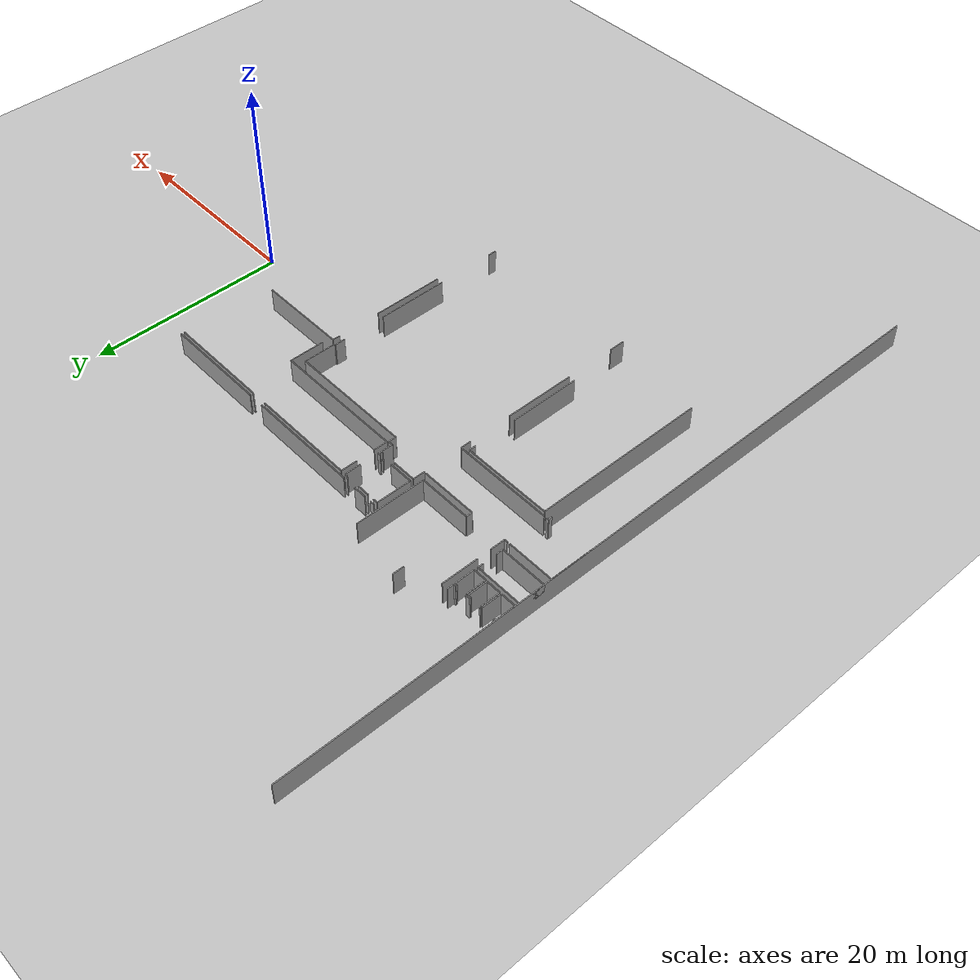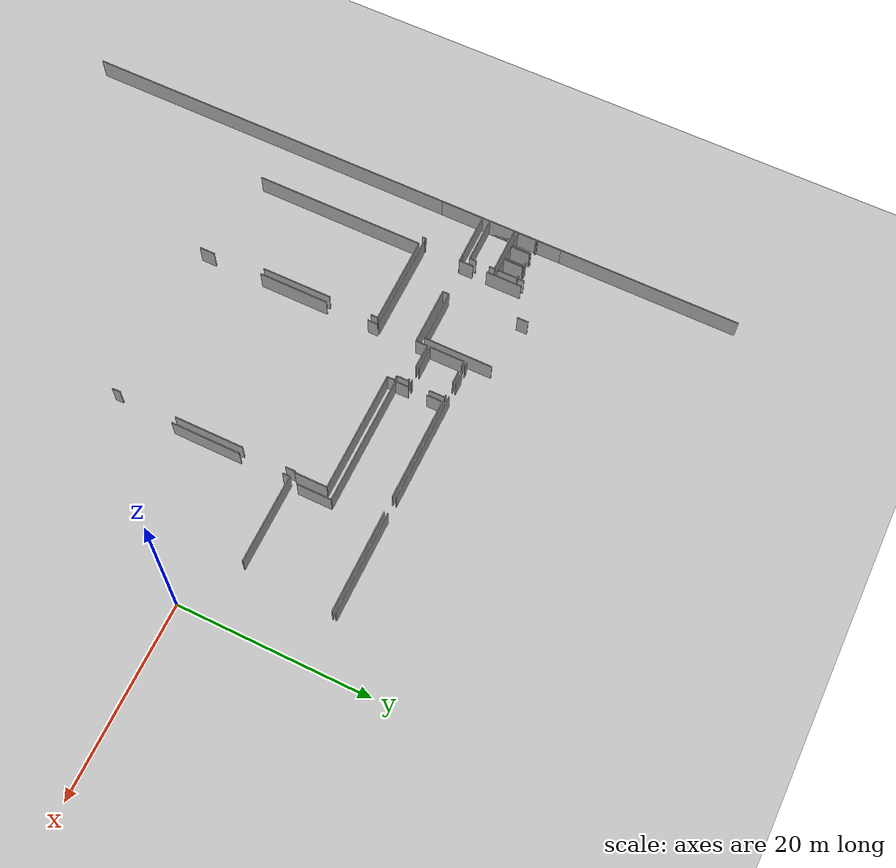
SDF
<sdf version="1.6">
 <world name="default">
  <model name="ground_plane">
   <static>1</static>
   <link name="link">
    <collision name="collision">
     <geometry><plane><normal>0 0 1</normal><size>100 100</size></plane></geometry>
     <surface><friction><ode><mu>100</mu><mu2>50</mu2></ode></friction></surface>
    </collision>
    <visual name="visual">
     <cast_shadows>0</cast_shadows>
     <geometry><plane><normal>0 0 1</normal><size>100 100</size></plane></geometry>
     <material>
      <script><uri>file://media/materials/scripts/gazebo.material</uri><name>Gazebo/Grey</name></script>
     </material>
    </visual>
   </link>
  </model>
  <model name="50053292">
   <static>1</static>
   <link name="Wall_7">
    <collision name="Wall_7_Collision">
     <geometry><box><size>5.9284049559 0.1 2.5</size></box></geometry>
     <pose>2.96420247795 0 1.25 0 0 0</pose>
    </collision>
    <visual name="Wall_7_Visual">
     <pose>2.96420247795 0 1.25 0 0 0</pose>
     <geometry><box><size>5.9284049559 0.1 2.5</size></box></geometry>
     <material>
      <script><uri>file://media/materials/scripts/gazebo.material</uri><name>Gazebo/Grey</name></script>
      <ambient>1 1 1 1</ambient>
     </material>
    </visual>
    <pose>15.3491798386 -27.5680927675 0 0 0 3.14159265359</pose>
   </link>
   <link name="Wall_8">
    <collision name="Wall_8_Collision">
     <geometry><box><size>0.65320793299 0.1 2.5</size></box></geometry>
     <pose>0.326603966495 0 1.25 0 0 0</pose>
    </collision>
    <visual name="Wall_8_Visual">
     <pose>0.326603966495 0 1.25 0 0 0</pose>
     <geometry><box><size>0.65320793299 0.1 2.5</size></box></geometry>
     <material>
      <script><uri>file://media/materials/scripts/gazebo.material</uri><name>Gazebo/Grey</name></script>
      <ambient>1 1 1 1</ambient>
     </material>
    </visual>
    <pose>9.42077488268 -27.5680927675 0 0 0 1.57079632679</pose>
   </link>
   <link name="Wall_9">
    <collision name="Wall_9_Collision">
     <geometry><box><size>5.43383142079 0.1 2.5</size></box></geometry>
     <pose>2.71691571039 0 1.25 0 0 0</pose>
    </collision>
    <visual name="Wall_9_Visual">
     <pose>2.71691571039 0 1.25 0 0 0</pose>
     <geometry><box><size>5.43383142079 0.1 2.5</size></box></geometry>
     <material>
      <script><uri>file://media/materials/scripts/gazebo.material</uri><name>Gazebo/Grey</name></script>
      <ambient>1 1 1 1</ambient>
     </material>
    </visual>
    <pose>9.42077488268 -26.9148848345 0 0 0 0.0</pose>
   </link>
   <link name="Wall_10">
    <collision name="Wall_10_Collision">
     <geometry><box><size>7.18871650928 0.1 2.5</size></box></geometry>
     <pose>3.59435825464 0 1.25 0 0 0</pose>
    </collision>
    <visual name="Wall_10_Visual">
     <pose>3.59435825464 0 1.25 0 0 0</pose>
     <geometry><box><size>7.18871650928 0.1 2.5</size></box></geometry>
     <material>
      <script><uri>file://media/materials/scripts/gazebo.material</uri><name>Gazebo/Grey</name></script>
      <ambient>1 1 1 1</ambient>
     </material>
    </visual>
    <pose>14.8546063035 -26.9148848345 0 0 0 1.57079632679</pose>
   </link>
   <link name="Wall_12">
    <collision name="Wall_12_Collision">
     <geometry><box><size>1.15463996088 0.1 2.5</size></box></geometry>
     <pose>0.577319980441 0 1.25 0 0 0</pose>
    </collision>
    <visual name="Wall_12_Visual">
     <pose>0.577319980441 0 1.25 0 0 0</pose>
     <geometry><box><size>1.15463996088 0.1 2.5</size></box></geometry>
     <material>
      <script><uri>file://media/materials/scripts/gazebo.material</uri><name>Gazebo/Grey</name></script>
      <ambient>1 1 1 1</ambient>
     </material>
    </visual>
    <pose>8.86091865701 -19.7261683252 0 0 0 1.57079632679</pose>
   </link>
   <link name="Wall_19">
    <collision name="Wall_19_Collision">
     <geometry><box><size>3.74600715061 0.1 2.5</size></box></geometry>
     <pose>1.87300357531 0 1.25 0 0 0</pose>
    </collision>
    <visual name="Wall_19_Visual">
     <pose>1.87300357531 0 1.25 0 0 0</pose>
     <geometry><box><size>3.74600715061 0.1 2.5</size></box></geometry>
     <material>
      <script><uri>file://media/materials/scripts/gazebo.material</uri><name>Gazebo/Grey</name></script>
      <ambient>1 1 1 1</ambient>
     </material>
    </visual>
    <pose>5.50292438512 -20.8548984245 0 0 0 -1.57079632679</pose>
   </link>
   <link name="Wall_20">
    <collision name="Wall_20_Collision">
     <geometry><box><size>1.49908870952 0.1 2.5</size></box></geometry>
     <pose>0.749544354762 0 1.25 0 0 0</pose>
    </collision>
    <visual name="Wall_20_Visual">
     <pose>0.749544354762 0 1.25 0 0 0</pose>
     <geometry><box><size>1.49908870952 0.1 2.5</size></box></geometry>
     <material>
      <script><uri>file://media/materials/scripts/gazebo.material</uri><name>Gazebo/Grey</name></script>
      <ambient>1 1 1 1</ambient>
     </material>
    </visual>
    <pose>5.50292438512 -26.0894525272 0 0 0 -1.57079632679</pose>
   </link>
   <link name="Wall_21">
    <collision name="Wall_21_Collision">
     <geometry><box><size>0.345210803396 0.1 2.5</size></box></geometry>
     <pose>0.172605401698 0 1.25 0 0 0</pose>
    </collision>
    <visual name="Wall_21_Visual">
     <pose>0.172605401698 0 1.25 0 0 0</pose>
     <geometry><box><size>0.345210803396 0.1 2.5</size></box></geometry>
     <material>
      <script><uri>file://media/materials/scripts/gazebo.material</uri><name>Gazebo/Grey</name></script>
      <ambient>1 1 1 1</ambient>
     </material>
    </visual>
    <pose>5.50292438512 -27.5885412367 0 0 0 3.14159265359</pose>
   </link>
   <link name="Wall_22">
    <collision name="Wall_22_Collision">
     <geometry><box><size>10.1914746529 0.1 2.5</size></box></geometry>
     <pose>5.09573732647 0 1.25 0 0 0</pose>
    </collision>
    <visual name="Wall_22_Visual">
     <pose>5.09573732647 0 1.25 0 0 0</pose>
     <geometry><box><size>10.1914746529 0.1 2.5</size></box></geometry>
     <material>
      <script><uri>file://media/materials/scripts/gazebo.material</uri><name>Gazebo/Grey</name></script>
      <ambient>1 1 1 1</ambient>
     </material>
    </visual>
    <pose>5.15771358172 -31.7080822257 0 0 0 -0.00128361635341</pose>
   </link>
   <link name="Wall_52">
    <collision name="Wall_52_Collision">
     <geometry><box><size>0.25058900482 0.1 2.5</size></box></geometry>
     <pose>0.12529450241 0 1.25 0 0 0</pose>
    </collision>
    <visual name="Wall_52_Visual">
     <pose>0.12529450241 0 1.25 0 0 0</pose>
     <geometry><box><size>0.25058900482 0.1 2.5</size></box></geometry>
     <material>
      <script><uri>file://media/materials/scripts/gazebo.material</uri><name>Gazebo/Grey</name></script>
      <ambient>1 1 1 1</ambient>
     </material>
    </visual>
    <pose>4.8386666582 -21.5034070198 0 0 0 3.14159265359</pose>
   </link>
   <link name="Wall_53">
    <collision name="Wall_53_Collision">
     <geometry><box><size>0.480221503915 0.1 2.5</size></box></geometry>
     <pose>0.240110751958 0 1.25 0 0 0</pose>
    </collision>
    <visual name="Wall_53_Visual">
     <pose>0.240110751958 0 1.25 0 0 0</pose>
     <geometry><box><size>0.480221503915 0.1 2.5</size></box></geometry>
     <material>
      <script><uri>file://media/materials/scripts/gazebo.material</uri><name>Gazebo/Grey</name></script>
      <ambient>1 1 1 1</ambient>
     </material>
    </visual>
    <pose>3.39978027421 -21.5034070198 0 0 0 3.14159265359</pose>
   </link>
   <link name="Wall_54">
    <collision name="Wall_54_Collision">
     <geometry><box><size>0.105544583378 0.1 2.5</size></box></geometry>
     <pose>0.0527722916892 0 1.25 0 0 0</pose>
    </collision>
    <visual name="Wall_54_Visual">
     <pose>0.0527722916892 0 1.25 0 0 0</pose>
     <geometry><box><size>0.105544583378 0.1 2.5</size></box></geometry>
     <material>
      <script><uri>file://media/materials/scripts/gazebo.material</uri><name>Gazebo/Grey</name></script>
      <ambient>1 1 1 1</ambient>
     </material>
    </visual>
    <pose>1.76707796455 -21.5034070198 0 0 0 3.14159265359</pose>
   </link>
   <link name="Wall_55">
    <collision name="Wall_55_Collision">
     <geometry><box><size>0.225568207076 0.1 2.5</size></box></geometry>
     <pose>0.112784103538 0 1.25 0 0 0</pose>
    </collision>
    <visual name="Wall_55_Visual">
     <pose>0.112784103538 0 1.25 0 0 0</pose>
     <geometry><box><size>0.225568207076 0.1 2.5</size></box></geometry>
     <material>
      <script><uri>file://media/materials/scripts/gazebo.material</uri><name>Gazebo/Grey</name></script>
      <ambient>1 1 1 1</ambient>
     </material>
    </visual>
    <pose>0.237253046631 -21.5034070198 0 0 0 3.14159265359</pose>
   </link>
   <link name="Wall_56">
    <collision name="Wall_56_Collision">
     <geometry><box><size>2.53027580032 0.1 2.5</size></box></geometry>
     <pose>1.26513790016 0 1.25 0 0 0</pose>
    </collision>
    <visual name="Wall_56_Visual">
     <pose>1.26513790016 0 1.25 0 0 0</pose>
     <geometry><box><size>2.53027580032 0.1 2.5</size></box></geometry>
     <material>
      <script><uri>file://media/materials/scripts/gazebo.material</uri><name>Gazebo/Grey</name></script>
      <ambient>1 1 1 1</ambient>
     </material>
    </visual>
    <pose>0.0116848395557 -21.5034070198 0 0 0 1.57079632679</pose>
   </link>
   <link name="Wall_59">
    <collision name="Wall_59_Collision">
     <geometry><box><size>0.68470619614 0.1 2.5</size></box></geometry>
     <pose>0.34235309807 0 1.25 0 0 0</pose>
    </collision>
    <visual name="Wall_59_Visual">
     <pose>0.34235309807 0 1.25 0 0 0</pose>
     <geometry><box><size>0.68470619614 0.1 2.5</size></box></geometry>
     <material>
      <script><uri>file://media/materials/scripts/gazebo.material</uri><name>Gazebo/Grey</name></script>
      <ambient>1 1 1 1</ambient>
     </material>
    </visual>
    <pose>4.8386666582 -20.8187008237 0 0 0 -1.57079632679</pose>
   </link>
   <link name="Wall_60">
    <collision name="Wall_60_Collision">
     <geometry><box><size>1.42580444405 0.1 2.5</size></box></geometry>
     <pose>0.712902222025 0 1.25 0 0 0</pose>
    </collision>
    <visual name="Wall_60_Visual">
     <pose>0.712902222025 0 1.25 0 0 0</pose>
     <geometry><box><size>1.42580444405 0.1 2.5</size></box></geometry>
     <material>
      <script><uri>file://media/materials/scripts/gazebo.material</uri><name>Gazebo/Grey</name></script>
      <ambient>1 1 1 1</ambient>
     </material>
    </visual>
    <pose>4.85975017305 -23.6765331589 0 0 0 3.14159265359</pose>
   </link>
   <link name="Wall_61">
    <collision name="Wall_61_Collision">
     <geometry><box><size>2.06326324546 0.1 2.5</size></box></geometry>
     <pose>1.03163162273 0 1.25 0 0 0</pose>
    </collision>
    <visual name="Wall_61_Visual">
     <pose>1.03163162273 0 1.25 0 0 0</pose>
     <geometry><box><size>2.06326324546 0.1 2.5</size></box></geometry>
     <material>
      <script><uri>file://media/materials/scripts/gazebo.material</uri><name>Gazebo/Grey</name></script>
      <ambient>1 1 1 1</ambient>
     </material>
    </visual>
    <pose>3.433945729 -23.6765331589 0 0 0 1.57079632679</pose>
   </link>
   <link name="Wall_62">
    <collision name="Wall_62_Collision">
     <geometry><box><size>0.225187179699 0.1 2.5</size></box></geometry>
     <pose>0.112593589849 0 1.25 0 0 0</pose>
    </collision>
    <visual name="Wall_62_Visual">
     <pose>0.112593589849 0 1.25 0 0 0</pose>
     <geometry><box><size>0.225187179699 0.1 2.5</size></box></geometry>
     <material>
      <script><uri>file://media/materials/scripts/gazebo.material</uri><name>Gazebo/Grey</name></script>
      <ambient>1 1 1 1</ambient>
     </material>
    </visual>
    <pose>4.59823838343 -21.6132699134 0 0 0 0.0</pose>
   </link>
   <link name="Wall_63">
    <collision name="Wall_63_Collision">
     <geometry><box><size>2.06358297564 0.1 2.5</size></box></geometry>
     <pose>1.03179148782 0 1.25 0 0 0</pose>
    </collision>
    <visual name="Wall_63_Visual">
     <pose>1.03179148782 0 1.25 0 0 0</pose>
     <geometry><box><size>2.06358297564 0.1 2.5</size></box></geometry>
     <material>
      <script><uri>file://media/materials/scripts/gazebo.material</uri><name>Gazebo/Grey</name></script>
      <ambient>1 1 1 1</ambient>
     </material>
    </visual>
    <pose>4.82342556313 -21.6132699134 0 0 0 -1.55319272834</pose>
   </link>
   <link name="Wall_64">
    <collision name="Wall_64_Collision">
     <geometry><box><size>1.51001149433 0.1 2.5</size></box></geometry>
     <pose>0.755005747163 0 1.25 0 0 0</pose>
    </collision>
    <visual name="Wall_64_Visual">
     <pose>0.755005747163 0 1.25 0 0 0</pose>
     <geometry><box><size>1.51001149433 0.1 2.5</size></box></geometry>
     <material>
      <script><uri>file://media/materials/scripts/gazebo.material</uri><name>Gazebo/Grey</name></script>
      <ambient>1 1 1 1</ambient>
     </material>
    </visual>
    <pose>3.28572607942 -23.6560846897 0 0 0 3.14159265359</pose>
   </link>
   <link name="Wall_65">
    <collision name="Wall_65_Collision">
     <geometry><box><size>2.03608329258 0.1 2.5</size></box></geometry>
     <pose>1.01804164629 0 1.25 0 0 0</pose>
    </collision>
    <visual name="Wall_65_Visual">
     <pose>1.01804164629 0 1.25 0 0 0</pose>
     <geometry><box><size>2.03608329258 0.1 2.5</size></box></geometry>
     <material>
      <script><uri>file://media/materials/scripts/gazebo.material</uri><name>Gazebo/Grey</name></script>
      <ambient>1 1 1 1</ambient>
     </material>
    </visual>
    <pose>1.77571458509 -23.6560846897 0 0 0 1.57079632679</pose>
   </link>
   <link name="Wall_66">
    <collision name="Wall_66_Collision">
     <geometry><box><size>0.365405254368 0.1 2.5</size></box></geometry>
     <pose>0.182702627184 0 1.25 0 0 0</pose>
    </collision>
    <visual name="Wall_66_Visual">
     <pose>0.182702627184 0 1.25 0 0 0</pose>
     <geometry><box><size>0.365405254368 0.1 2.5</size></box></geometry>
     <material>
      <script><uri>file://media/materials/scripts/gazebo.material</uri><name>Gazebo/Grey</name></script>
      <ambient>1 1 1 1</ambient>
     </material>
    </visual>
    <pose>2.9036826296 -21.6200013971 0 0 0 0.0</pose>
   </link>
   <link name="Wall_67">
    <collision name="Wall_67_Collision">
     <geometry><box><size>2.03615127235 0.1 2.5</size></box></geometry>
     <pose>1.01807563617 0 1.25 0 0 0</pose>
    </collision>
    <visual name="Wall_67_Visual">
     <pose>1.01807563617 0 1.25 0 0 0</pose>
     <geometry><box><size>2.03615127235 0.1 2.5</size></box></geometry>
     <material>
      <script><uri>file://media/materials/scripts/gazebo.material</uri><name>Gazebo/Grey</name></script>
      <ambient>1 1 1 1</ambient>
     </material>
    </visual>
    <pose>3.26908788396 -21.6200013971 0 0 0 -1.56262484128</pose>
   </link>
   <link name="Wall_68">
    <collision name="Wall_68_Collision">
     <geometry><box><size>1.59777480012 0.1 2.5</size></box></geometry>
     <pose>0.79888740006 0 1.25 0 0 0</pose>
    </collision>
    <visual name="Wall_68_Visual">
     <pose>0.79888740006 0 1.25 0 0 0</pose>
     <geometry><box><size>1.59777480012 0.1 2.5</size></box></geometry>
     <material>
      <script><uri>file://media/materials/scripts/gazebo.material</uri><name>Gazebo/Grey</name></script>
      <ambient>1 1 1 1</ambient>
     </material>
    </visual>
    <pose>1.61644514158 -23.6560846897 0 0 0 3.14159265359</pose>
   </link>
   <link name="Wall_69">
    <collision name="Wall_69_Collision">
     <geometry><box><size>2.03163797319 0.1 2.5</size></box></geometry>
     <pose>1.01581898659 0 1.25 0 0 0</pose>
    </collision>
    <visual name="Wall_69_Visual">
     <pose>1.01581898659 0 1.25 0 0 0</pose>
     <geometry><box><size>2.03163797319 0.1 2.5</size></box></geometry>
     <material>
      <script><uri>file://media/materials/scripts/gazebo.material</uri><name>Gazebo/Grey</name></script>
      <ambient>1 1 1 1</ambient>
     </material>
    </visual>
    <pose>0.018670341464 -23.6560846897 0 0 0 1.57079632679</pose>
   </link>
   <link name="Wall_70">
    <collision name="Wall_70_Collision">
     <geometry><box><size>0.208548984245 0.1 2.5</size></box></geometry>
     <pose>0.104274492122 0 1.25 0 0 0</pose>
    </collision>
    <visual name="Wall_70_Visual">
     <pose>0.104274492122 0 1.25 0 0 0</pose>
     <geometry><box><size>0.208548984245 0.1 2.5</size></box></geometry>
     <material>
      <script><uri>file://media/materials/scripts/gazebo.material</uri><name>Gazebo/Grey</name></script>
      <ambient>1 1 1 1</ambient>
     </material>
    </visual>
    <pose>0.018670341464 -21.6244467165 0 0 0 0.0</pose>
   </link>
   <link name="Wall_71">
    <collision name="Wall_71_Collision">
     <geometry><box><size>2.03179204015 0.1 2.5</size></box></geometry>
     <pose>1.01589602008 0 1.25 0 0 0</pose>
    </collision>
    <visual name="Wall_71_Visual">
     <pose>1.01589602008 0 1.25 0 0 0</pose>
     <geometry><box><size>2.03179204015 0.1 2.5</size></box></geometry>
     <material>
      <script><uri>file://media/materials/scripts/gazebo.material</uri><name>Gazebo/Grey</name></script>
      <ambient>1 1 1 1</ambient>
     </material>
    </visual>
    <pose>1.64146593933 -21.6244467165 0 0 0 -1.5831112831</pose>
   </link>
   <link name="Wall_72">
    <collision name="Wall_72_Collision">
     <geometry><box><size>4.83739656694 0.1 2.5</size></box></geometry>
     <pose>2.41869828347 0 1.25 0 0 0</pose>
    </collision>
    <visual name="Wall_72_Visual">
     <pose>2.41869828347 0 1.25 0 0 0</pose>
     <geometry><box><size>4.83739656694 0.1 2.5</size></box></geometry>
     <material>
      <script><uri>file://media/materials/scripts/gazebo.material</uri><name>Gazebo/Grey</name></script>
      <ambient>1 1 1 1</ambient>
     </material>
    </visual>
    <pose>4.83739656694 -26.7824143165 0 0 0 3.14159265359</pose>
   </link>
   <link name="Wall_73">
    <collision name="Wall_73_Collision">
     <geometry><box><size>2.71697921496 0.1 2.5</size></box></geometry>
     <pose>1.35848960748 0 1.25 0 0 0</pose>
    </collision>
    <visual name="Wall_73_Visual">
     <pose>1.35848960748 0 1.25 0 0 0</pose>
     <geometry><box><size>2.71697921496 0.1 2.5</size></box></geometry>
     <material>
      <script><uri>file://media/materials/scripts/gazebo.material</uri><name>Gazebo/Grey</name></script>
      <ambient>1 1 1 1</ambient>
     </material>
    </visual>
    <pose>0.0 -26.7824143165 0 0 0 1.57079632679</pose>
   </link>
   <link name="Wall_74">
    <collision name="Wall_74_Collision">
     <geometry><box><size>4.82190145362 0.1 2.5</size></box></geometry>
     <pose>2.41095072681 0 1.25 0 0 0</pose>
    </collision>
    <visual name="Wall_74_Visual">
     <pose>2.41095072681 0 1.25 0 0 0</pose>
     <geometry><box><size>4.82190145362 0.1 2.5</size></box></geometry>
     <material>
      <script><uri>file://media/materials/scripts/gazebo.material</uri><name>Gazebo/Grey</name></script>
      <ambient>1 1 1 1</ambient>
     </material>
    </visual>
    <pose>0.0 -24.0654351015 0 0 0 0.0</pose>
   </link>
   <link name="Wall_75">
    <collision name="Wall_75_Collision">
     <geometry><box><size>0.569635928341 0.1 2.5</size></box></geometry>
     <pose>0.284817964171 0 1.25 0 0 0</pose>
    </collision>
    <visual name="Wall_75_Visual">
     <pose>0.284817964171 0 1.25 0 0 0</pose>
     <geometry><box><size>0.569635928341 0.1 2.5</size></box></geometry>
     <material>
      <script><uri>file://media/materials/scripts/gazebo.material</uri><name>Gazebo/Grey</name></script>
      <ambient>1 1 1 1</ambient>
     </material>
    </visual>
    <pose>4.82190145362 -24.0654351015 0 0 0 -1.57079632679</pose>
   </link>
   <link name="Wall_76">
    <collision name="Wall_76_Collision">
     <geometry><box><size>0.731482681371 0.1 2.5</size></box></geometry>
     <pose>0.365741340685 0 1.25 0 0 0</pose>
    </collision>
    <visual name="Wall_76_Visual">
     <pose>0.365741340685 0 1.25 0 0 0</pose>
     <geometry><box><size>0.731482681371 0.1 2.5</size></box></geometry>
     <material>
      <script><uri>file://media/materials/scripts/gazebo.material</uri><name>Gazebo/Grey</name></script>
      <ambient>1 1 1 1</ambient>
     </material>
    </visual>
    <pose>4.82190145362 -26.0510957712 0 0 0 -1.54961158408</pose>
   </link>
   <link name="Wall_77">
    <collision name="Wall_77_Collision">
     <geometry><box><size>4.48253307 0.1 2.5</size></box></geometry>
     <pose>2.241266535 0 1.25 0 0 0</pose>
    </collision>
    <visual name="Wall_77_Visual">
     <pose>2.241266535 0 1.25 0 0 0</pose>
     <geometry><box><size>4.48253307 0.1 2.5</size></box></geometry>
     <material>
      <script><uri>file://media/materials/scripts/gazebo.material</uri><name>Gazebo/Grey</name></script>
      <ambient>1 1 1 1</ambient>
     </material>
    </visual>
    <pose>0.0127009125606 -32.082505128 0 0 0 1.57079632679</pose>
   </link>
   <link name="Wall_78">
    <collision name="Wall_78_Collision">
     <geometry><box><size>4.87994462402 0.1 2.5</size></box></geometry>
     <pose>2.43997231201 0 1.25 0 0 0</pose>
    </collision>
    <visual name="Wall_78_Visual">
     <pose>2.43997231201 0 1.25 0 0 0</pose>
     <geometry><box><size>4.87994462402 0.1 2.5</size></box></geometry>
     <material>
      <script><uri>file://media/materials/scripts/gazebo.material</uri><name>Gazebo/Grey</name></script>
      <ambient>1 1 1 1</ambient>
     </material>
    </visual>
    <pose>0.0127009125606 -27.599972058 0 0 0 0.0</pose>
   </link>
   <link name="Wall_79">
    <collision name="Wall_79_Collision">
     <geometry><box><size>0.228743435216 0.1 2.5</size></box></geometry>
     <pose>0.114371717608 0 1.25 0 0 0</pose>
    </collision>
    <visual name="Wall_79_Visual">
     <pose>0.114371717608 0 1.25 0 0 0</pose>
     <geometry><box><size>0.228743435216 0.1 2.5</size></box></geometry>
     <material>
      <script><uri>file://media/materials/scripts/gazebo.material</uri><name>Gazebo/Grey</name></script>
      <ambient>1 1 1 1</ambient>
     </material>
    </visual>
    <pose>4.89264553658 -31.7080822257 0 0 0 3.14159265359</pose>
   </link>
   <link name="Wall_80">
    <collision name="Wall_80_Collision">
     <geometry><box><size>0.374589683097 0.1 2.5</size></box></geometry>
     <pose>0.187294841548 0 1.25 0 0 0</pose>
    </collision>
    <visual name="Wall_80_Visual">
     <pose>0.187294841548 0 1.25 0 0 0</pose>
     <geometry><box><size>0.374589683097 0.1 2.5</size></box></geometry>
     <material>
      <script><uri>file://media/materials/scripts/gazebo.material</uri><name>Gazebo/Grey</name></script>
      <ambient>1 1 1 1</ambient>
     </material>
    </visual>
    <pose>4.66390210137 -31.7080822257 0 0 0 -1.54095444213</pose>
   </link>
   <link name="Wall_81">
    <collision name="Wall_81_Collision">
     <geometry><box><size>17.8629444526 0.1 2.5</size></box></geometry>
     <pose>8.93147222628 0 1.25 0 0 0</pose>
    </collision>
    <visual name="Wall_81_Visual">
     <pose>8.93147222628 0 1.25 0 0 0</pose>
     <geometry><box><size>17.8629444526 0.1 2.5</size></box></geometry>
     <material>
      <script><uri>file://media/materials/scripts/gazebo.material</uri><name>Gazebo/Grey</name></script>
      <ambient>1 1 1 1</ambient>
     </material>
    </visual>
    <pose>5.50292438512 -49.9355428688 0 0 0 1.57079632679</pose>
   </link>
   <link name="Wall_82">
    <collision name="Wall_82_Collision">
     <geometry><box><size>9.32958233049 0.1 2.5</size></box></geometry>
     <pose>4.66479116525 0 1.25 0 0 0</pose>
    </collision>
    <visual name="Wall_82_Visual">
     <pose>4.66479116525 0 1.25 0 0 0</pose>
     <geometry><box><size>9.32958233049 0.1 2.5</size></box></geometry>
     <material>
      <script><uri>file://media/materials/scripts/gazebo.material</uri><name>Gazebo/Grey</name></script>
      <ambient>1 1 1 1</ambient>
     </material>
    </visual>
    <pose>5.50292438512 -32.0725984162 0 0 0 0.0</pose>
   </link>
   <link name="Wall_83">
    <collision name="Wall_83_Collision">
     <geometry><box><size>0.708456902628 0.1 2.5</size></box></geometry>
     <pose>0.354228451314 0 1.25 0 0 0</pose>
    </collision>
    <visual name="Wall_83_Visual">
     <pose>0.354228451314 0 1.25 0 0 0</pose>
     <geometry><box><size>0.708456902628 0.1 2.5</size></box></geometry>
     <material>
      <script><uri>file://media/materials/scripts/gazebo.material</uri><name>Gazebo/Grey</name></script>
      <ambient>1 1 1 1</ambient>
     </material>
    </visual>
    <pose>14.8325067156 -32.0725984162 0 0 0 -1.57079632679</pose>
   </link>
   <link name="Wall_84">
    <collision name="Wall_84_Collision">
     <geometry><box><size>7.3418396544 0.1 2.5</size></box></geometry>
     <pose>3.6709198272 0 1.25 0 0 0</pose>
    </collision>
    <visual name="Wall_84_Visual">
     <pose>3.6709198272 0 1.25 0 0 0</pose>
     <geometry><box><size>7.3418396544 0.1 2.5</size></box></geometry>
     <material>
      <script><uri>file://media/materials/scripts/gazebo.material</uri><name>Gazebo/Grey</name></script>
      <ambient>1 1 1 1</ambient>
     </material>
    </visual>
    <pose>14.8325067156 -37.3406829281 0 0 0 -1.5662119804</pose>
   </link>
   <link name="Wall_85">
    <collision name="Wall_85_Collision">
     <geometry><box><size>0.87344175679 0.1 2.5</size></box></geometry>
     <pose>0.436720878395 0 1.25 0 0 0</pose>
    </collision>
    <visual name="Wall_85_Visual">
     <pose>0.436720878395 0 1.25 0 0 0</pose>
     <geometry><box><size>0.87344175679 0.1 2.5</size></box></geometry>
     <material>
      <script><uri>file://media/materials/scripts/gazebo.material</uri><name>Gazebo/Grey</name></script>
      <ambient>1 1 1 1</ambient>
     </material>
    </visual>
    <pose>32.8624681683 -50.6958194946 0 0 0 -1.57079632679</pose>
   </link>
   <link name="Wall_86">
    <collision name="Wall_86_Collision">
     <geometry><box><size>1.6145400047 0.1 2.5</size></box></geometry>
     <pose>0.80727000235 0 1.25 0 0 0</pose>
    </collision>
    <visual name="Wall_86_Visual">
     <pose>0.80727000235 0 1.25 0 0 0</pose>
     <geometry><box><size>1.6145400047 0.1 2.5</size></box></geometry>
     <material>
      <script><uri>file://media/materials/scripts/gazebo.material</uri><name>Gazebo/Grey</name></script>
      <ambient>1 1 1 1</ambient>
     </material>
    </visual>
    <pose>15.5004477072 -51.5692612514 0 0 0 1.57079632679</pose>
   </link>
   <link name="Wall_87">
    <collision name="Wall_87_Collision">
     <geometry><box><size>7.33223682122 0.1 2.5</size></box></geometry>
     <pose>3.66611841061 0 1.25 0 0 0</pose>
    </collision>
    <visual name="Wall_87_Visual">
     <pose>3.66611841061 0 1.25 0 0 0</pose>
     <geometry><box><size>7.33223682122 0.1 2.5</size></box></geometry>
     <material>
      <script><uri>file://media/materials/scripts/gazebo.material</uri><name>Gazebo/Grey</name></script>
      <ambient>1 1 1 1</ambient>
     </material>
    </visual>
    <pose>15.5004477072 -44.6919711181 0 0 0 1.57079632679</pose>
   </link>
   <link name="Wall_88">
    <collision name="Wall_88_Collision">
     <geometry><box><size>1.08008560415 0.1 2.5</size></box></geometry>
     <pose>0.540042802075 0 1.25 0 0 0</pose>
    </collision>
    <visual name="Wall_88_Visual">
     <pose>0.540042802075 0 1.25 0 0 0</pose>
     <geometry><box><size>1.08008560415 0.1 2.5</size></box></geometry>
     <material>
      <script><uri>file://media/materials/scripts/gazebo.material</uri><name>Gazebo/Grey</name></script>
      <ambient>1 1 1 1</ambient>
     </material>
    </visual>
    <pose>15.5004477072 -32.8069651804 0 0 0 1.57079632679</pose>
   </link>
   <link name="Wall_89">
    <collision name="Wall_89_Collision">
     <geometry><box><size>1.22932132674 0.1 2.5</size></box></geometry>
     <pose>0.614660663369 0 1.25 0 0 0</pose>
    </collision>
    <visual name="Wall_89_Visual">
     <pose>0.614660663369 0 1.25 0 0 0</pose>
     <geometry><box><size>1.22932132674 0.1 2.5</size></box></geometry>
     <material>
      <script><uri>file://media/materials/scripts/gazebo.material</uri><name>Gazebo/Grey</name></script>
      <ambient>1 1 1 1</ambient>
     </material>
    </visual>
    <pose>15.5004477072 -27.5876521728 0 0 0 1.57079632679</pose>
   </link>
   <link name="Wall_90">
    <collision name="Wall_90_Collision">
     <geometry><box><size>2.51617778737 0.1 2.5</size></box></geometry>
     <pose>1.25808889369 0 1.25 0 0 0</pose>
    </collision>
    <visual name="Wall_90_Visual">
     <pose>1.25808889369 0 1.25 0 0 0</pose>
     <geometry><box><size>2.51617778737 0.1 2.5</size></box></geometry>
     <material>
      <script><uri>file://media/materials/scripts/gazebo.material</uri><name>Gazebo/Grey</name></script>
      <ambient>1 1 1 1</ambient>
     </material>
    </visual>
    <pose>15.5004477072 -26.3583308461 0 0 0 0.0</pose>
   </link>
   <link name="Wall_91">
    <collision name="Wall_91_Collision">
     <geometry><box><size>0.210581130254 0.1 2.5</size></box></geometry>
     <pose>0.105290565127 0 1.25 0 0 0</pose>
    </collision>
    <visual name="Wall_91_Visual">
     <pose>0.105290565127 0 1.25 0 0 0</pose>
     <geometry><box><size>0.210581130254 0.1 2.5</size></box></geometry>
     <material>
      <script><uri>file://media/materials/scripts/gazebo.material</uri><name>Gazebo/Grey</name></script>
      <ambient>1 1 1 1</ambient>
     </material>
    </visual>
    <pose>19.5213026056 -26.3583308461 0 0 0 0.0</pose>
   </link>
   <link name="Wall_92">
    <collision name="Wall_92_Collision">
     <geometry><box><size>1.22792422636 0.1 2.5</size></box></geometry>
     <pose>0.613962113178 0 1.25 0 0 0</pose>
    </collision>
    <visual name="Wall_92_Visual">
     <pose>0.613962113178 0 1.25 0 0 0</pose>
     <geometry><box><size>1.22792422636 0.1 2.5</size></box></geometry>
     <material>
      <script><uri>file://media/materials/scripts/gazebo.material</uri><name>Gazebo/Grey</name></script>
      <ambient>1 1 1 1</ambient>
     </material>
    </visual>
    <pose>19.7318837358 -26.3583308461 0 0 0 -1.57079632679</pose>
   </link>
   <link name="Wall_93">
    <collision name="Wall_93_Collision">
     <geometry><box><size>0.481110567794 0.1 2.5</size></box></geometry>
     <pose>0.240555283897 0 1.25 0 0 0</pose>
    </collision>
    <visual name="Wall_93_Visual">
     <pose>0.240555283897 0 1.25 0 0 0</pose>
     <geometry><box><size>0.481110567794 0.1 2.5</size></box></geometry>
     <material>
      <script><uri>file://media/materials/scripts/gazebo.material</uri><name>Gazebo/Grey</name></script>
      <ambient>1 1 1 1</ambient>
     </material>
    </visual>
    <pose>19.7318837358 -27.5862550724 0 0 0 0.0</pose>
   </link>
   <link name="Wall_94">
    <collision name="Wall_94_Collision">
     <geometry><box><size>0.790123770393 0.1 2.5</size></box></geometry>
     <pose>0.395061885196 0 1.25 0 0 0</pose>
    </collision>
    <visual name="Wall_94_Visual">
     <pose>0.395061885196 0 1.25 0 0 0</pose>
     <geometry><box><size>0.790123770393 0.1 2.5</size></box></geometry>
     <material>
      <script><uri>file://media/materials/scripts/gazebo.material</uri><name>Gazebo/Grey</name></script>
      <ambient>1 1 1 1</ambient>
     </material>
    </visual>
    <pose>20.2129943036 -27.5862550724 0 0 0 -1.57079632679</pose>
   </link>
   <link name="Wall_95">
    <collision name="Wall_95_Collision">
     <geometry><box><size>12.7470168732 0.1 2.5</size></box></geometry>
     <pose>6.37350843658 0 1.25 0 0 0</pose>
    </collision>
    <visual name="Wall_95_Visual">
     <pose>6.37350843658 0 1.25 0 0 0</pose>
     <geometry><box><size>12.7470168732 0.1 2.5</size></box></geometry>
     <material>
      <script><uri>file://media/materials/scripts/gazebo.material</uri><name>Gazebo/Grey</name></script>
      <ambient>1 1 1 1</ambient>
     </material>
    </visual>
    <pose>20.2129943036 -28.3763788428 0 0 0 0.0</pose>
   </link>
   <link name="Wall_96">
    <collision name="Wall_96_Collision">
     <geometry><box><size>3.36320164604 0.1 2.5</size></box></geometry>
     <pose>1.68160082302 0 1.25 0 0 0</pose>
    </collision>
    <visual name="Wall_96_Visual">
     <pose>1.68160082302 0 1.25 0 0 0</pose>
     <geometry><box><size>3.36320164604 0.1 2.5</size></box></geometry>
     <material>
      <script><uri>file://media/materials/scripts/gazebo.material</uri><name>Gazebo/Grey</name></script>
      <ambient>1 1 1 1</ambient>
     </material>
    </visual>
    <pose>32.9600111768 -28.3763788428 0 0 0 -1.57079632679</pose>
   </link>
   <link name="Wall_97">
    <collision name="Wall_97_Collision">
     <geometry><box><size>0.120277641949 0.1 2.5</size></box></geometry>
     <pose>0.0601388209743 0 1.25 0 0 0</pose>
    </collision>
    <visual name="Wall_97_Visual">
     <pose>0.0601388209743 0 1.25 0 0 0</pose>
     <geometry><box><size>0.120277641949 0.1 2.5</size></box></geometry>
     <material>
      <script><uri>file://media/materials/scripts/gazebo.material</uri><name>Gazebo/Grey</name></script>
      <ambient>1 1 1 1</ambient>
     </material>
    </visual>
    <pose>32.9600111768 -31.7395804889 0 0 0 3.14159265359</pose>
   </link>
   <link name="Wall_98">
    <collision name="Wall_98_Collision">
     <geometry><box><size>1.04617416761 0.1 2.5</size></box></geometry>
     <pose>0.523087083807 0 1.25 0 0 0</pose>
    </collision>
    <visual name="Wall_98_Visual">
     <pose>0.523087083807 0 1.25 0 0 0</pose>
     <geometry><box><size>1.04617416761 0.1 2.5</size></box></geometry>
     <material>
      <script><uri>file://media/materials/scripts/gazebo.material</uri><name>Gazebo/Grey</name></script>
      <ambient>1 1 1 1</ambient>
     </material>
    </visual>
    <pose>32.8397335349 -31.7395804889 0 0 0 -1.57079632679</pose>
   </link>
   <link name="Wall_99">
    <collision name="Wall_99_Collision">
     <geometry><box><size>7.28629498603 0.1 2.5</size></box></geometry>
     <pose>3.64314749302 0 1.25 0 0 0</pose>
    </collision>
    <visual name="Wall_99_Visual">
     <pose>3.64314749302 0 1.25 0 0 0</pose>
     <geometry><box><size>7.28629498603 0.1 2.5</size></box></geometry>
     <material>
      <script><uri>file://media/materials/scripts/gazebo.material</uri><name>Gazebo/Grey</name></script>
      <ambient>1 1 1 1</ambient>
     </material>
    </visual>
    <pose>32.8397335349 -37.3787856658 0 0 0 -1.56767613053</pose>
   </link>
   <link name="Wall_100">
    <collision name="Wall_100_Collision">
     <geometry><box><size>7.32055198166 0.1 2.5</size></box></geometry>
     <pose>3.66027599083 0 1.25 0 0 0</pose>
    </collision>
    <visual name="Wall_100_Visual">
     <pose>3.66027599083 0 1.25 0 0 0</pose>
     <geometry><box><size>7.32055198166 0.1 2.5</size></box></geometry>
     <material>
      <script><uri>file://media/materials/scripts/gazebo.material</uri><name>Gazebo/Grey</name></script>
      <ambient>1 1 1 1</ambient>
     </material>
    </visual>
    <pose>33.5188513295 -44.6656802291 0 0 0 1.57079632679</pose>
   </link>
   <link name="Wall_101">
    <collision name="Wall_101_Collision">
     <geometry><box><size>0.774120620567 0.1 2.5</size></box></geometry>
     <pose>0.387060310283 0 1.25 0 0 0</pose>
    </collision>
    <visual name="Wall_101_Visual">
     <pose>0.387060310283 0 1.25 0 0 0</pose>
     <geometry><box><size>0.774120620567 0.1 2.5</size></box></geometry>
     <material>
      <script><uri>file://media/materials/scripts/gazebo.material</uri><name>Gazebo/Grey</name></script>
      <ambient>1 1 1 1</ambient>
     </material>
    </visual>
    <pose>33.5188513295 -32.7734347713 0 0 0 1.57079632679</pose>
   </link>
   <link name="Wall_102">
    <collision name="Wall_102_Collision">
     <geometry><box><size>9.31802450006 0.1 2.5</size></box></geometry>
     <pose>4.65901225003 0 1.25 0 0 0</pose>
    </collision>
    <visual name="Wall_102_Visual">
     <pose>4.65901225003 0 1.25 0 0 0</pose>
     <geometry><box><size>9.31802450006 0.1 2.5</size></box></geometry>
     <material>
      <script><uri>file://media/materials/scripts/gazebo.material</uri><name>Gazebo/Grey</name></script>
      <ambient>1 1 1 1</ambient>
     </material>
    </visual>
    <pose>33.5188513295 -31.9993141507 0 0 0 0.0</pose>
   </link>
   <link name="Wall_185">
    <collision name="Wall_185_Collision">
     <geometry><box><size>3.58216537858 0.1 2.5</size></box></geometry>
     <pose>1.79108268929 0 1.25 0 0 0</pose>
    </collision>
    <visual name="Wall_185_Visual">
     <pose>1.79108268929 0 1.25 0 0 0</pose>
     <geometry><box><size>3.58216537858 0.1 2.5</size></box></geometry>
     <material>
      <script><uri>file://media/materials/scripts/gazebo.material</uri><name>Gazebo/Grey</name></script>
      <ambient>1 1 1 1</ambient>
     </material>
    </visual>
    <pose>33.9011487975 -31.0353148874 0 0 0 1.57079632679</pose>
   </link>
   <link name="Wall_186">
    <collision name="Wall_186_Collision">
     <geometry><box><size>13.6029313706 0.1 2.5</size></box></geometry>
     <pose>6.80146568531 0 1.25 0 0 0</pose>
    </collision>
    <visual name="Wall_186_Visual">
     <pose>6.80146568531 0 1.25 0 0 0</pose>
     <geometry><box><size>13.6029313706 0.1 2.5</size></box></geometry>
     <material>
      <script><uri>file://media/materials/scripts/gazebo.material</uri><name>Gazebo/Grey</name></script>
      <ambient>1 1 1 1</ambient>
     </material>
    </visual>
    <pose>33.9011487975 -27.4531495088 0 0 0 3.14159265359</pose>
   </link>
   <link name="Wall_187">
    <collision name="Wall_187_Collision">
     <geometry><box><size>1.42377229804 0.1 2.5</size></box></geometry>
     <pose>0.71188614902 0 1.25 0 0 0</pose>
    </collision>
    <visual name="Wall_187_Visual">
     <pose>0.71188614902 0 1.25 0 0 0</pose>
     <geometry><box><size>1.42377229804 0.1 2.5</size></box></geometry>
     <material>
      <script><uri>file://media/materials/scripts/gazebo.material</uri><name>Gazebo/Grey</name></script>
      <ambient>1 1 1 1</ambient>
     </material>
    </visual>
    <pose>20.2982174269 -27.4531495088 0 0 0 1.57079632679</pose>
   </link>
   <link name="Wall_188">
    <collision name="Wall_188_Collision">
     <geometry><box><size>1.65188068763 0.1 2.5</size></box></geometry>
     <pose>0.825940343814 0 1.25 0 0 0</pose>
    </collision>
    <visual name="Wall_188_Visual">
     <pose>0.825940343814 0 1.25 0 0 0</pose>
     <geometry><box><size>1.65188068763 0.1 2.5</size></box></geometry>
     <material>
      <script><uri>file://media/materials/scripts/gazebo.material</uri><name>Gazebo/Grey</name></script>
      <ambient>1 1 1 1</ambient>
     </material>
    </visual>
    <pose>20.2982174269 -24.1015056932 0 0 0 1.57079632679</pose>
   </link>
   <link name="Wall_189">
    <collision name="Wall_189_Collision">
     <geometry><box><size>10.8135569541 0.1 2.5</size></box></geometry>
     <pose>5.40677847703 0 1.25 0 0 0</pose>
    </collision>
    <visual name="Wall_189_Visual">
     <pose>5.40677847703 0 1.25 0 0 0</pose>
     <geometry><box><size>10.8135569541 0.1 2.5</size></box></geometry>
     <material>
      <script><uri>file://media/materials/scripts/gazebo.material</uri><name>Gazebo/Grey</name></script>
      <ambient>1 1 1 1</ambient>
     </material>
    </visual>
    <pose>20.2982174269 -22.4496250056 0 0 0 0.0</pose>
   </link>
   <link name="Wall_190">
    <collision name="Wall_190_Collision">
     <geometry><box><size>10.6937873486 0.1 2.5</size></box></geometry>
     <pose>5.34689367431 0 1.25 0 0 0</pose>
    </collision>
    <visual name="Wall_190_Visual">
     <pose>5.34689367431 0 1.25 0 0 0</pose>
     <geometry><box><size>10.6937873486 0.1 2.5</size></box></geometry>
     <material>
      <script><uri>file://media/materials/scripts/gazebo.material</uri><name>Gazebo/Grey</name></script>
      <ambient>1 1 1 1</ambient>
     </material>
    </visual>
    <pose>32.8317319599 -22.4496250056 0 0 0 0.0</pose>
   </link>
   <link name="Wall_193">
    <collision name="Wall_193_Collision">
     <geometry><box><size>0.323746261169 0.1 2.5</size></box></geometry>
     <pose>0.161873130584 0 1.25 0 0 0</pose>
    </collision>
    <visual name="Wall_193_Visual">
     <pose>0.161873130584 0 1.25 0 0 0</pose>
     <geometry><box><size>0.323746261169 0.1 2.5</size></box></geometry>
     <material>
      <script><uri>file://media/materials/scripts/gazebo.material</uri><name>Gazebo/Grey</name></script>
      <ambient>1 1 1 1</ambient>
     </material>
    </visual>
    <pose>19.7826873861 -26.0368707492 0 0 0 3.14159265359</pose>
   </link>
   <link name="Wall_194">
    <collision name="Wall_194_Collision">
     <geometry><box><size>2.54018251211 0.1 2.5</size></box></geometry>
     <pose>1.27009125606 0 1.25 0 0 0</pose>
    </collision>
    <visual name="Wall_194_Visual">
     <pose>1.27009125606 0 1.25 0 0 0</pose>
     <geometry><box><size>2.54018251211 0.1 2.5</size></box></geometry>
     <material>
      <script><uri>file://media/materials/scripts/gazebo.material</uri><name>Gazebo/Grey</name></script>
      <ambient>1 1 1 1</ambient>
     </material>
    </visual>
    <pose>18.0463456299 -26.0368707492 0 0 0 3.14159265359</pose>
   </link>
   <link name="Wall_195">
    <collision name="Wall_195_Collision">
     <geometry><box><size>3.59804151928 0.1 2.5</size></box></geometry>
     <pose>1.79902075964 0 1.25 0 0 0</pose>
    </collision>
    <visual name="Wall_195_Visual">
     <pose>1.79902075964 0 1.25 0 0 0</pose>
     <geometry><box><size>3.59804151928 0.1 2.5</size></box></geometry>
     <material>
      <script><uri>file://media/materials/scripts/gazebo.material</uri><name>Gazebo/Grey</name></script>
      <ambient>1 1 1 1</ambient>
     </material>
    </visual>
    <pose>15.5061631178 -26.0368707492 0 0 0 1.57079632679</pose>
   </link>
   <link name="Wall_196">
    <collision name="Wall_196_Collision">
     <geometry><box><size>0.481110567794 0.1 2.5</size></box></geometry>
     <pose>0.240555283897 0 1.25 0 0 0</pose>
    </collision>
    <visual name="Wall_196_Visual">
     <pose>0.240555283897 0 1.25 0 0 0</pose>
     <geometry><box><size>0.481110567794 0.1 2.5</size></box></geometry>
     <material>
      <script><uri>file://media/materials/scripts/gazebo.material</uri><name>Gazebo/Grey</name></script>
      <ambient>1 1 1 1</ambient>
     </material>
    </visual>
    <pose>15.5061631178 -22.4388292299 0 0 0 0.0</pose>
   </link>
   <link name="Wall_197">
    <collision name="Wall_197_Collision">
     <geometry><box><size>1.25612025224 0.1 2.5</size></box></geometry>
     <pose>0.62806012612 0 1.25 0 0 0</pose>
    </collision>
    <visual name="Wall_197_Visual">
     <pose>0.62806012612 0 1.25 0 0 0</pose>
     <geometry><box><size>1.25612025224 0.1 2.5</size></box></geometry>
     <material>
      <script><uri>file://media/materials/scripts/gazebo.material</uri><name>Gazebo/Grey</name></script>
      <ambient>1 1 1 1</ambient>
     </material>
    </visual>
    <pose>16.7358654719 -22.4388292299 0 0 0 0.0</pose>
   </link>
   <link name="Wall_198">
    <collision name="Wall_198_Collision">
     <geometry><box><size>0.287040623869 0.1 2.5</size></box></geometry>
     <pose>0.143520311934 0 1.25 0 0 0</pose>
    </collision>
    <visual name="Wall_198_Visual">
     <pose>0.143520311934 0 1.25 0 0 0</pose>
     <geometry><box><size>0.287040623869 0.1 2.5</size></box></geometry>
     <material>
      <script><uri>file://media/materials/scripts/gazebo.material</uri><name>Gazebo/Grey</name></script>
      <ambient>1 1 1 1</ambient>
     </material>
    </visual>
    <pose>19.4821837949 -22.4388292299 0 0 0 0.0</pose>
   </link>
   <link name="Wall_199">
    <collision name="Wall_199_Collision">
     <geometry><box><size>1.66743015239 0.1 2.5</size></box></geometry>
     <pose>0.833715076193 0 1.25 0 0 0</pose>
    </collision>
    <visual name="Wall_199_Visual">
     <pose>0.833715076193 0 1.25 0 0 0</pose>
     <geometry><box><size>1.66743015239 0.1 2.5</size></box></geometry>
     <material>
      <script><uri>file://media/materials/scripts/gazebo.material</uri><name>Gazebo/Grey</name></script>
      <ambient>1 1 1 1</ambient>
     </material>
    </visual>
    <pose>19.7692244188 -22.4388292299 0 0 0 -1.56272215735</pose>
   </link>
   <link name="Wall_213">
    <collision name="Wall_213_Collision">
     <geometry><box><size>0.468536664359 0.1 2.5</size></box></geometry>
     <pose>0.23426833218 0 1.25 0 0 0</pose>
    </collision>
    <visual name="Wall_213_Visual">
     <pose>0.23426833218 0 1.25 0 0 0</pose>
     <geometry><box><size>0.468536664359 0.1 2.5</size></box></geometry>
     <material>
      <script><uri>file://media/materials/scripts/gazebo.material</uri><name>Gazebo/Grey</name></script>
      <ambient>1 1 1 1</ambient>
     </material>
    </visual>
    <pose>15.5216582311 -22.1039061657 0 0 0 0.0</pose>
   </link>
   <link name="Wall_214">
    <collision name="Wall_214_Collision">
     <geometry><box><size>1.33613600137 0.1 2.5</size></box></geometry>
     <pose>0.668068000686 0 1.25 0 0 0</pose>
    </collision>
    <visual name="Wall_214_Visual">
     <pose>0.668068000686 0 1.25 0 0 0</pose>
     <geometry><box><size>1.33613600137 0.1 2.5</size></box></geometry>
     <material>
      <script><uri>file://media/materials/scripts/gazebo.material</uri><name>Gazebo/Grey</name></script>
      <ambient>1 1 1 1</ambient>
     </material>
    </visual>
    <pose>16.7182112035 -22.1039061657 0 0 0 0.0</pose>
   </link>
   <link name="Wall_215">
    <collision name="Wall_215_Collision">
     <geometry><box><size>11.6142224819 0.1 2.5</size></box></geometry>
     <pose>5.80711124094 0 1.25 0 0 0</pose>
    </collision>
    <visual name="Wall_215_Visual">
     <pose>5.80711124094 0 1.25 0 0 0</pose>
     <geometry><box><size>11.6142224819 0.1 2.5</size></box></geometry>
     <material>
      <script><uri>file://media/materials/scripts/gazebo.material</uri><name>Gazebo/Grey</name></script>
      <ambient>1 1 1 1</ambient>
     </material>
    </visual>
    <pose>19.5113958938 -22.1039061657 0 0 0 0.0</pose>
   </link>
   <link name="Wall_216">
    <collision name="Wall_216_Collision">
     <geometry><box><size>10.719443192 0.1 2.5</size></box></geometry>
     <pose>5.359721596 0 1.25 0 0 0</pose>
    </collision>
    <visual name="Wall_216_Visual">
     <pose>5.359721596 0 1.25 0 0 0</pose>
     <geometry><box><size>10.719443192 0.1 2.5</size></box></geometry>
     <material>
      <script><uri>file://media/materials/scripts/gazebo.material</uri><name>Gazebo/Grey</name></script>
      <ambient>1 1 1 1</ambient>
     </material>
    </visual>
    <pose>32.8171259105 -22.1039061657 0 0 0 0.0</pose>
   </link>
   <link name="Wall_377">
    <collision name="Wall_377_Collision">
     <geometry><box><size>71.9375877157 0.1 2.5</size></box></geometry>
     <pose>35.9687938578 0 1.25 0 0 0</pose>
    </collision>
    <visual name="Wall_377_Visual">
     <pose>35.9687938578 0 1.25 0 0 0</pose>
     <geometry><box><size>71.9375877157 0.1 2.5</size></box></geometry>
     <material>
      <script><uri>file://media/materials/scripts/gazebo.material</uri><name>Gazebo/Grey</name></script>
      <ambient>1 1 1 1</ambient>
     </material>
    </visual>
    <pose>0.0 -71.9375877157 0 0 0 1.57079632679</pose>
   </link>
   <pose>-48.55 35.9875877157 0 0 0 0</pose>
  </model>
 </world>
</sdf>
